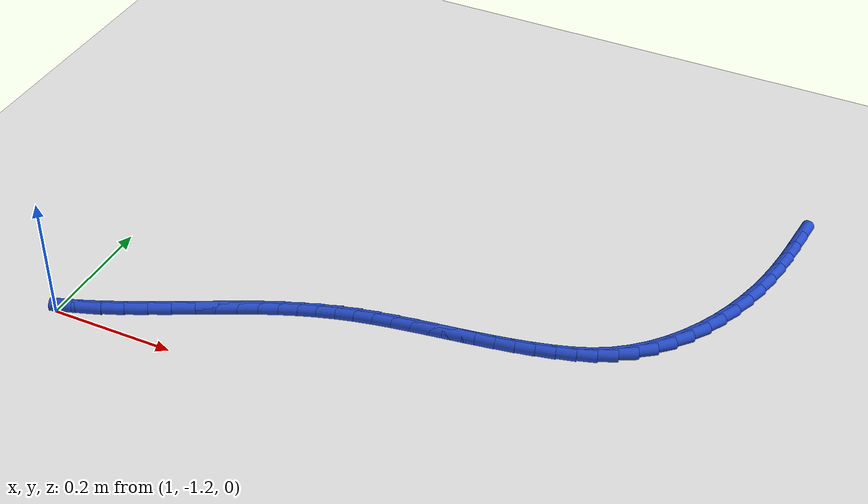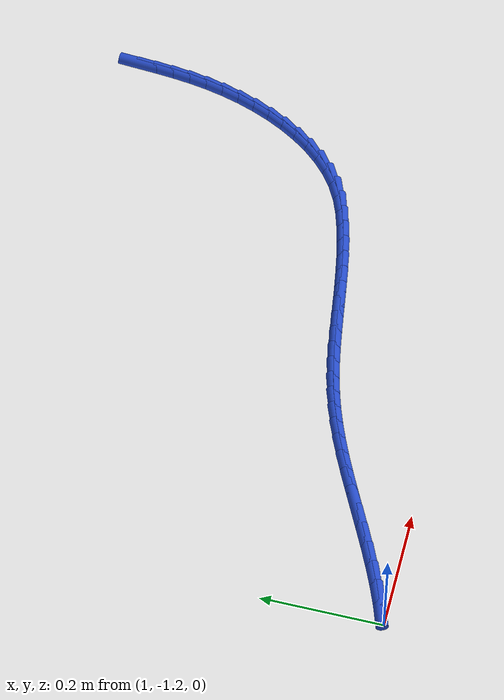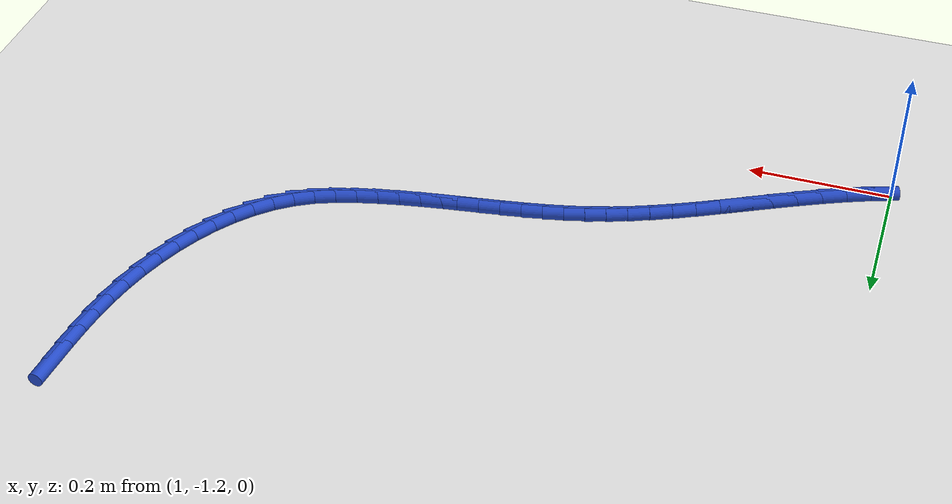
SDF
<sdf version="1.6">
 <world name="default">
  <model name="ground_plane">
   <static>1</static>
   <link name="link">
    <collision name="collision">
     <geometry><plane><normal>0 0 1</normal><size>100 100</size></plane></geometry>
     <surface><friction><ode><mu>100</mu><mu2>50</mu2></ode></friction></surface>
    </collision>
    <visual name="visual">
     <cast_shadows>0</cast_shadows>
     <geometry><plane><normal>0 0 1</normal><size>100 100</size></plane></geometry>
     <material>
      <script><uri>file://media/materials/scripts/gazebo.material</uri><name>Gazebo/WhiteGlow</name></script>
     </material>
    </visual>
   </link>
  </model>
  <model name="line">
   <link name="link_140">
    <pose>1.957367994658128 -0.5544792920082611 0.01 0 1.57 1.4935159692644042</pose>
    <collision name="collision">
     <geometry><cylinder><radius>0.01</radius><length>0.08</length></cylinder></geometry>
    </collision>
    <visual name="visual">
     <material>
      <script><name>Gazebo/Blue</name><uri>file://media/materials/scripts/gazebo.material</uri></script>
     </material>
     <geometry><cylinder><radius>0.01</radius><length>0.08</length></cylinder></geometry>
    </visual>
   </link>
   <link name="link_141">
    <pose>1.955036980884222 -0.5845823030588828 0.01 0 1.57 1.473334102179612</pose>
    <collision name="collision">
     <geometry><cylinder><radius>0.01</radius><length>0.08</length></cylinder></geometry>
    </collision>
    <visual name="visual">
     <material>
      <script><name>Gazebo/Blue</name><uri>file://media/materials/scripts/gazebo.material</uri></script>
     </material>
     <geometry><cylinder><radius>0.01</radius><length>0.08</length></cylinder></geometry>
    </visual>
   </link>
   <link name="link_142">
    <pose>1.952076729563824 -0.6148593910479755 0.01 0 1.57 1.4414683613507064</pose>
    <collision name="collision">
     <geometry><cylinder><radius>0.01</radius><length>0.08</length></cylinder></geometry>
    </collision>
    <visual name="visual">
     <material>
      <script><name>Gazebo/Blue</name><uri>file://media/materials/scripts/gazebo.material</uri></script>
     </material>
     <geometry><cylinder><radius>0.01</radius><length>0.08</length></cylinder></geometry>
    </visual>
   </link>
   <link name="link_143">
    <pose>1.9481197032765858 -0.6452854497913342 0.01 0 1.57 1.3983415429575448</pose>
    <collision name="collision">
     <geometry><cylinder><radius>0.01</radius><length>0.08</length></cylinder></geometry>
    </collision>
    <visual name="visual">
     <material>
      <script><name>Gazebo/Blue</name><uri>file://media/materials/scripts/gazebo.material</uri></script>
     </material>
     <geometry><cylinder><radius>0.01</radius><length>0.08</length></cylinder></geometry>
    </visual>
   </link>
   <link name="link_144">
    <pose>1.94279836460216 -0.6758353731047546 0.01 0 1.57 1.3454498378009807</pose>
    <collision name="collision">
     <geometry><cylinder><radius>0.01</radius><length>0.08</length></cylinder></geometry>
    </collision>
    <visual name="visual">
     <material>
      <script><name>Gazebo/Blue</name><uri>file://media/materials/scripts/gazebo.material</uri></script>
     </material>
     <geometry><cylinder><radius>0.01</radius><length>0.08</length></cylinder></geometry>
    </visual>
   </link>
   <link name="link_145">
    <pose>1.9357792710717527 -0.7064543416475312 0.01 0 1.57 1.2885738423343072</pose>
    <collision name="collision">
     <geometry><cylinder><radius>0.01</radius><length>0.08</length></cylinder></geometry>
    </collision>
    <visual name="visual">
     <material>
      <script><name>Gazebo/Blue</name><uri>file://media/materials/scripts/gazebo.material</uri></script>
     </material>
     <geometry><cylinder><radius>0.01</radius><length>0.08</length></cylinder></geometry>
    </visual>
   </link>
   <link name="link_146">
    <pose>1.9269535540520244 -0.7368918238924141 0.01 0 1.57 1.2288871286067802</pose>
    <collision name="collision">
     <geometry><cylinder><radius>0.01</radius><length>0.08</length></cylinder></geometry>
    </collision>
    <visual name="visual">
     <material>
      <script><name>Gazebo/Blue</name><uri>file://media/materials/scripts/gazebo.material</uri></script>
     </material>
     <geometry><cylinder><radius>0.01</radius><length>0.08</length></cylinder></geometry>
    </visual>
   </link>
   <link name="link_147">
    <pose>1.9163031928910184 -0.7668181158785352 0.01 0 1.57 1.165100364244754</pose>
    <collision name="collision">
     <geometry><cylinder><radius>0.01</radius><length>0.08</length></cylinder></geometry>
    </collision>
    <visual name="visual">
     <material>
      <script><name>Gazebo/Blue</name><uri>file://media/materials/scripts/gazebo.material</uri></script>
     </material>
     <geometry><cylinder><radius>0.01</radius><length>0.08</length></cylinder></geometry>
    </visual>
   </link>
   <link name="link_148">
    <pose>1.9038104227585935 -0.7959032907007709 0.01 0 1.57 1.095867584588802</pose>
    <collision name="collision">
     <geometry><cylinder><radius>0.01</radius><length>0.08</length></cylinder></geometry>
    </collision>
    <visual name="visual">
     <material>
      <script><name>Gazebo/Blue</name><uri>file://media/materials/scripts/gazebo.material</uri></script>
     </material>
     <geometry><cylinder><radius>0.01</radius><length>0.08</length></cylinder></geometry>
    </visual>
   </link>
   <link name="link_149">
    <pose>1.889457478824604 -0.823817421454 0.01 0 1.57 1.0197833417149318</pose>
    <collision name="collision">
     <geometry><cylinder><radius>0.01</radius><length>0.08</length></cylinder></geometry>
    </collision>
    <visual name="visual">
     <material>
      <script><name>Gazebo/Blue</name><uri>file://media/materials/scripts/gazebo.material</uri></script>
     </material>
     <geometry><cylinder><radius>0.01</radius><length>0.08</length></cylinder></geometry>
    </visual>
   </link>
   <link name="link_150">
    <pose>1.8732265962589063 -0.8502305812331006 0.01 0 1.57 0.9354179605159298</pose>
    <collision name="collision">
     <geometry><cylinder><radius>0.01</radius><length>0.08</length></cylinder></geometry>
    </collision>
    <visual name="visual">
     <material>
      <script><name>Gazebo/Blue</name><uri>file://media/materials/scripts/gazebo.material</uri></script>
     </material>
     <geometry><cylinder><radius>0.01</radius><length>0.08</length></cylinder></geometry>
    </visual>
   </link>
   <link name="link_151">
    <pose>1.855100010231357 -0.8748128431329508 0.01 0 1.57 0.8414228262642883</pose>
    <collision name="collision">
     <geometry><cylinder><radius>0.01</radius><length>0.08</length></cylinder></geometry>
    </collision>
    <visual name="visual">
     <material>
      <script><name>Gazebo/Blue</name><uri>file://media/materials/scripts/gazebo.material</uri></script>
     </material>
     <geometry><cylinder><radius>0.01</radius><length>0.08</length></cylinder></geometry>
    </visual>
   </link>
   <link name="link_152">
    <pose>1.835059955911811 -0.8972342802484283 0.01 0 1.57 0.7367371820467912</pose>
    <collision name="collision">
     <geometry><cylinder><radius>0.01</radius><length>0.08</length></cylinder></geometry>
    </collision>
    <visual name="visual">
     <material>
      <script><name>Gazebo/Blue</name><uri>file://media/materials/scripts/gazebo.material</uri></script>
     </material>
     <geometry><cylinder><radius>0.01</radius><length>0.08</length></cylinder></geometry>
    </visual>
   </link>
   <link name="link_153">
    <pose>1.813088668470125 -0.9171649656744114 0.01 0 1.57 0.6209159924473678</pose>
    <collision name="collision">
     <geometry><cylinder><radius>0.01</radius><length>0.08</length></cylinder></geometry>
    </collision>
    <visual name="visual">
     <material>
      <script><name>Gazebo/Blue</name><uri>file://media/materials/scripts/gazebo.material</uri></script>
     </material>
     <geometry><cylinder><radius>0.01</radius><length>0.08</length></cylinder></geometry>
    </visual>
   </link>
   <link name="link_154">
    <pose>1.7891683830761553 -0.9342749725057782 0.01 0 1.57 0.4946519569045114</pose>
    <collision name="collision">
     <geometry><cylinder><radius>0.01</radius><length>0.08</length></cylinder></geometry>
    </collision>
    <visual name="visual">
     <material>
      <script><name>Gazebo/Blue</name><uri>file://media/materials/scripts/gazebo.material</uri></script>
     </material>
     <geometry><cylinder><radius>0.01</radius><length>0.08</length></cylinder></geometry>
    </visual>
   </link>
   <link name="link_155">
    <pose>1.763282893690641 -0.9482370490956443 0.01 0 1.57 0.3750595193359655</pose>
    <collision name="collision">
     <geometry><cylinder><radius>0.01</radius><length>0.08</length></cylinder></geometry>
    </collision>
    <visual name="visual">
     <material>
      <script><name>Gazebo/Blue</name><uri>file://media/materials/scripts/gazebo.material</uri></script>
     </material>
     <geometry><cylinder><radius>0.01</radius><length>0.08</length></cylinder></geometry>
    </visual>
   </link>
   <link name="link_156">
    <pose>1.7356454673290622 -0.9591177744809206 0.01 0 1.57 0.2933650020457403</pose>
    <collision name="collision">
     <geometry><cylinder><radius>0.01</radius><length>0.08</length></cylinder></geometry>
    </collision>
    <visual name="visual">
     <material>
      <script><name>Gazebo/Blue</name><uri>file://media/materials/scripts/gazebo.material</uri></script>
     </material>
     <geometry><cylinder><radius>0.01</radius><length>0.08</length></cylinder></geometry>
    </visual>
   </link>
   <link name="link_157">
    <pose>1.7069388518389685 -0.9677895016179924 0.01 0 1.57 0.24455124108046272</pose>
    <collision name="collision">
     <geometry><cylinder><radius>0.01</radius><length>0.08</length></cylinder></geometry>
    </collision>
    <visual name="visual">
     <material>
      <script><name>Gazebo/Blue</name><uri>file://media/materials/scripts/gazebo.material</uri></script>
     </material>
     <geometry><cylinder><radius>0.01</radius><length>0.08</length></cylinder></geometry>
    </visual>
   </link>
   <link name="link_158">
    <pose>1.6777675806157182 -0.9750690731162193 0.01 0 1.57 0.20806374612145975</pose>
    <collision name="collision">
     <geometry><cylinder><radius>0.01</radius><length>0.08</length></cylinder></geometry>
    </collision>
    <visual name="visual">
     <material>
      <script><name>Gazebo/Blue</name><uri>file://media/materials/scripts/gazebo.material</uri></script>
     </material>
     <geometry><cylinder><radius>0.01</radius><length>0.08</length></cylinder></geometry>
    </visual>
   </link>
   <link name="link_159">
    <pose>1.6483091811005004 -0.9812883027187866 0.01 0 1.57 0.17999276948970572</pose>
    <collision name="collision">
     <geometry><cylinder><radius>0.01</radius><length>0.08</length></cylinder></geometry>
    </collision>
    <visual name="visual">
     <material>
      <script><name>Gazebo/Blue</name><uri>file://media/materials/scripts/gazebo.material</uri></script>
     </material>
     <geometry><cylinder><radius>0.01</radius><length>0.08</length></cylinder></geometry>
    </visual>
   </link>
   <link name="link_160">
    <pose>1.6186573717869976 -0.9866838069980014 0.01 0 1.57 0.16023304913970135</pose>
    <collision name="collision">
     <geometry><cylinder><radius>0.01</radius><length>0.08</length></cylinder></geometry>
    </collision>
    <visual name="visual">
     <material>
      <script><name>Gazebo/Blue</name><uri>file://media/materials/scripts/gazebo.material</uri></script>
     </material>
     <geometry><cylinder><radius>0.01</radius><length>0.08</length></cylinder></geometry>
    </visual>
   </link>
   <link name="link_161">
    <pose>1.5889058711688921 -0.9914922025261711 0.01 0 1.57 0.14870202823168413</pose>
    <collision name="collision">
     <geometry><cylinder><radius>0.01</radius><length>0.08</length></cylinder></geometry>
    </collision>
    <visual name="visual">
     <material>
      <script><name>Gazebo/Blue</name><uri>file://media/materials/scripts/gazebo.material</uri></script>
     </material>
     <geometry><cylinder><radius>0.01</radius><length>0.08</length></cylinder></geometry>
    </visual>
   </link>
   <link name="link_162">
    <pose>1.5591483977398646 -0.9959501058756023 0.01 0 1.57 0.14537984514581034</pose>
    <collision name="collision">
     <geometry><cylinder><radius>0.01</radius><length>0.08</length></cylinder></geometry>
    </collision>
    <visual name="visual">
     <material>
      <script><name>Gazebo/Blue</name><uri>file://media/materials/scripts/gazebo.material</uri></script>
     </material>
     <geometry><cylinder><radius>0.01</radius><length>0.08</length></cylinder></geometry>
    </visual>
   </link>
   <link name="link_163">
    <pose>1.5294786699936 -1.0002941336186026 0.01 0 1.57 0.15033330395468017</pose>
    <collision name="collision">
     <geometry><cylinder><radius>0.01</radius><length>0.08</length></cylinder></geometry>
    </collision>
    <visual name="visual">
     <material>
      <script><name>Gazebo/Blue</name><uri>file://media/materials/scripts/gazebo.material</uri></script>
     </material>
     <geometry><cylinder><radius>0.01</radius><length>0.08</length></cylinder></geometry>
    </visual>
   </link>
   <link name="link_164">
    <pose>1.499990406423779 -1.0047609023274793 0.01 0 1.57 0.16372548651500277</pose>
    <collision name="collision">
     <geometry><cylinder><radius>0.01</radius><length>0.08</length></cylinder></geometry>
    </collision>
    <visual name="visual">
     <material>
      <script><name>Gazebo/Blue</name><uri>file://media/materials/scripts/gazebo.material</uri></script>
     </material>
     <geometry><cylinder><radius>0.01</radius><length>0.08</length></cylinder></geometry>
    </visual>
   </link>
   <link name="link_165">
    <pose>1.4707773255240844 -1.0095870285745396 0.01 0 1.57 0.1858106517715257</pose>
    <collision name="collision">
     <geometry><cylinder><radius>0.01</radius><length>0.08</length></cylinder></geometry>
    </collision>
    <visual name="visual">
     <material>
      <script><name>Gazebo/Blue</name><uri>file://media/materials/scripts/gazebo.material</uri></script>
     </material>
     <geometry><cylinder><radius>0.01</radius><length>0.08</length></cylinder></geometry>
    </visual>
   </link>
   <link name="link_166">
    <pose>1.4419331457881974 -1.0150091289320902 0.01 0 1.57 0.21691148415332895</pose>
    <collision name="collision">
     <geometry><cylinder><radius>0.01</radius><length>0.08</length></cylinder></geometry>
    </collision>
    <visual name="visual">
     <material>
      <script><name>Gazebo/Blue</name><uri>file://media/materials/scripts/gazebo.material</uri></script>
     </material>
     <geometry><cylinder><radius>0.01</radius><length>0.08</length></cylinder></geometry>
    </visual>
   </link>
   <link name="link_167">
    <pose>1.413551585709801 -1.0212638199724386 0.01 0 1.57 0.2572445277581669</pose>
    <collision name="collision">
     <geometry><cylinder><radius>0.01</radius><length>0.08</length></cylinder></geometry>
    </collision>
    <visual name="visual">
     <material>
      <script><name>Gazebo/Blue</name><uri>file://media/materials/scripts/gazebo.material</uri></script>
     </material>
     <geometry><cylinder><radius>0.01</radius><length>0.08</length></cylinder></geometry>
    </visual>
   </link>
   <link name="link_168">
    <pose>1.3857219808408696 -1.0285850438871702 0.01 0 1.57 0.301900608810556</pose>
    <collision name="collision">
     <geometry><cylinder><radius>0.01</radius><length>0.08</length></cylinder></geometry>
    </collision>
    <visual name="visual">
     <material>
      <script><name>Gazebo/Blue</name><uri>file://media/materials/scripts/gazebo.material</uri></script>
     </material>
     <geometry><cylinder><radius>0.01</radius><length>0.08</length></cylinder></geometry>
    </visual>
   </link>
   <link name="link_169">
    <pose>1.3583657895813166 -1.0371043076886968 0.01 0 1.57 0.34335707193044185</pose>
    <collision name="collision">
     <geometry><cylinder><radius>0.01</radius><length>0.08</length></cylinder></geometry>
    </collision>
    <visual name="visual">
     <material>
      <script><name>Gazebo/Blue</name><uri>file://media/materials/scripts/gazebo.material</uri></script>
     </material>
     <geometry><cylinder><radius>0.01</radius><length>0.08</length></cylinder></geometry>
    </visual>
   </link>
   <link name="link_170">
    <pose>1.331187832870082 -1.0468209306744394 0.01 0 1.57 0.37990206693946776</pose>
    <collision name="collision">
     <geometry><cylinder><radius>0.01</radius><length>0.08</length></cylinder></geometry>
    </collision>
    <visual name="visual">
     <material>
      <script><name>Gazebo/Blue</name><uri>file://media/materials/scripts/gazebo.material</uri></script>
     </material>
     <geometry><cylinder><radius>0.01</radius><length>0.08</length></cylinder></geometry>
    </visual>
   </link>
   <link name="link_171">
    <pose>1.3038785974373703 -1.0577254857029943 0.01 0 1.57 0.41066760434092703</pose>
    <collision name="collision">
     <geometry><cylinder><radius>0.01</radius><length>0.08</length></cylinder></geometry>
    </collision>
    <visual name="visual">
     <material>
      <script><name>Gazebo/Blue</name><uri>file://media/materials/scripts/gazebo.material</uri></script>
     </material>
     <geometry><cylinder><radius>0.01</radius><length>0.08</length></cylinder></geometry>
    </visual>
   </link>
   <link name="link_172">
    <pose>1.2761285700133846 -1.069808545632959 0.01 0 1.57 0.43524275738937984</pose>
    <collision name="collision">
     <geometry><cylinder><radius>0.01</radius><length>0.08</length></cylinder></geometry>
    </collision>
    <visual name="visual">
     <material>
      <script><name>Gazebo/Blue</name><uri>file://media/materials/scripts/gazebo.material</uri></script>
     </material>
     <geometry><cylinder><radius>0.01</radius><length>0.08</length></cylinder></geometry>
    </visual>
   </link>
   <link name="link_173">
    <pose>1.247628237328328 -1.0830606833229302 0.01 0 1.57 0.4534059697528013</pose>
    <collision name="collision">
     <geometry><cylinder><radius>0.01</radius><length>0.08</length></cylinder></geometry>
    </collision>
    <visual name="visual">
     <material>
      <script><name>Gazebo/Blue</name><uri>file://media/materials/scripts/gazebo.material</uri></script>
     </material>
     <geometry><cylinder><radius>0.01</radius><length>0.08</length></cylinder></geometry>
    </visual>
   </link>
   <link name="link_174">
    <pose>1.2180945702485 -1.0974513385963303 0.01 0 1.57 0.46309258847489027</pose>
    <collision name="collision">
     <geometry><cylinder><radius>0.01</radius><length>0.08</length></cylinder></geometry>
    </collision>
    <visual name="visual">
     <material>
      <script><name>Gazebo/Blue</name><uri>file://media/materials/scripts/gazebo.material</uri></script>
     </material>
     <geometry><cylinder><radius>0.01</radius><length>0.08</length></cylinder></geometry>
    </visual>
   </link>
   <link name="link_175">
    <pose>1.1875626252126956 -1.1126961346685003 0.01 0 1.57 0.46375900658258595</pose>
    <collision name="collision">
     <geometry><cylinder><radius>0.01</radius><length>0.08</length></cylinder></geometry>
    </collision>
    <visual name="visual">
     <material>
      <script><name>Gazebo/Blue</name><uri>file://media/materials/scripts/gazebo.material</uri></script>
     </material>
     <geometry><cylinder><radius>0.01</radius><length>0.08</length></cylinder></geometry>
    </visual>
   </link>
   <link name="link_176">
    <pose>1.1562776284092378 -1.128342989654141 0.01 0 1.57 0.45605186076353865</pose>
    <collision name="collision">
     <geometry><cylinder><radius>0.01</radius><length>0.08</length></cylinder></geometry>
    </collision>
    <visual name="visual">
     <material>
      <script><name>Gazebo/Blue</name><uri>file://media/materials/scripts/gazebo.material</uri></script>
     </material>
     <geometry><cylinder><radius>0.01</radius><length>0.08</length></cylinder></geometry>
    </visual>
   </link>
   <link name="link_177">
    <pose>1.1244885382702101 -1.1439368435214003 0.01 0 1.57 0.43999988645949367</pose>
    <collision name="collision">
     <geometry><cylinder><radius>0.01</radius><length>0.08</length></cylinder></geometry>
    </collision>
    <visual name="visual">
     <material>
      <script><name>Gazebo/Blue</name><uri>file://media/materials/scripts/gazebo.material</uri></script>
     </material>
     <geometry><cylinder><radius>0.01</radius><length>0.08</length></cylinder></geometry>
    </visual>
   </link>
   <link name="link_178">
    <pose>1.0924443132276984 -1.1590226362384235 0.01 0 1.57 0.4150424867772507</pose>
    <collision name="collision">
     <geometry><cylinder><radius>0.01</radius><length>0.08</length></cylinder></geometry>
    </collision>
    <visual name="visual">
     <material>
      <script><name>Gazebo/Blue</name><uri>file://media/materials/scripts/gazebo.material</uri></script>
     </material>
     <geometry><cylinder><radius>0.01</radius><length>0.08</length></cylinder></geometry>
    </visual>
   </link>
   <link name="link_179">
    <pose>1.0603939117137855 -1.1731453077733576 0.01 0 1.57 0.3800033195715637</pose>
    <collision name="collision">
     <geometry><cylinder><radius>0.01</radius><length>0.08</length></cylinder></geometry>
    </collision>
    <visual name="visual">
     <material>
      <script><name>Gazebo/Blue</name><uri>file://media/materials/scripts/gazebo.material</uri></script>
     </material>
     <geometry><cylinder><radius>0.01</radius><length>0.08</length></cylinder></geometry>
    </visual>
   </link>
   <link name="link_180">
    <pose>1.0285862921605569 -1.1858497980943492 0.01 0 1.57 0.33299154474944526</pose>
    <collision name="collision">
     <geometry><cylinder><radius>0.01</radius><length>0.08</length></cylinder></geometry>
    </collision>
    <visual name="visual">
     <material>
      <script><name>Gazebo/Blue</name><uri>file://media/materials/scripts/gazebo.material</uri></script>
     </material>
     <geometry><cylinder><radius>0.01</radius><length>0.08</length></cylinder></geometry>
    </visual>
   </link>
  </model>
 </world>
</sdf>
